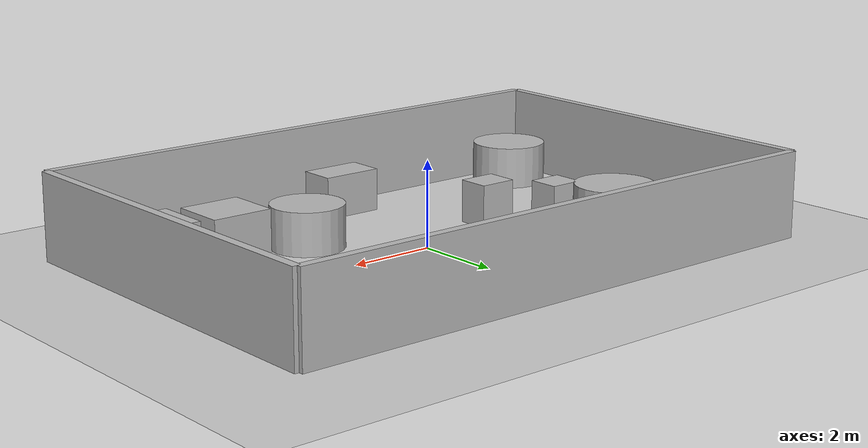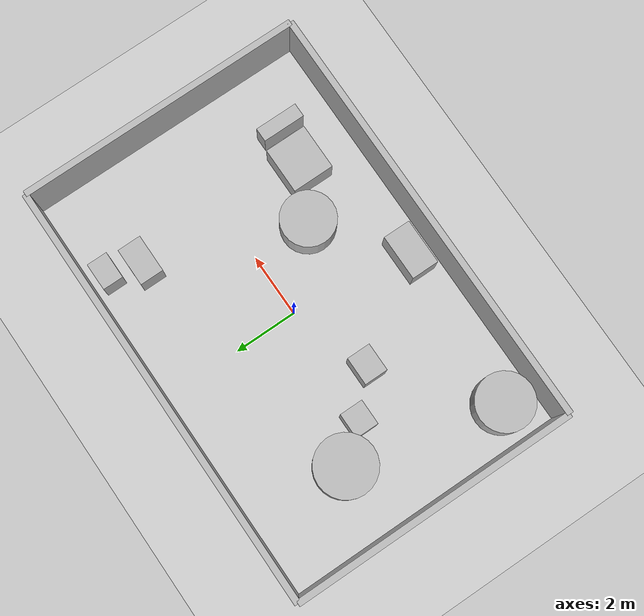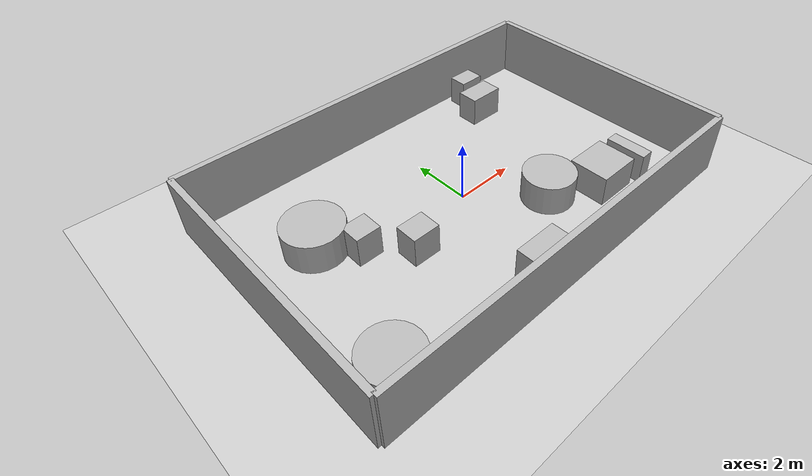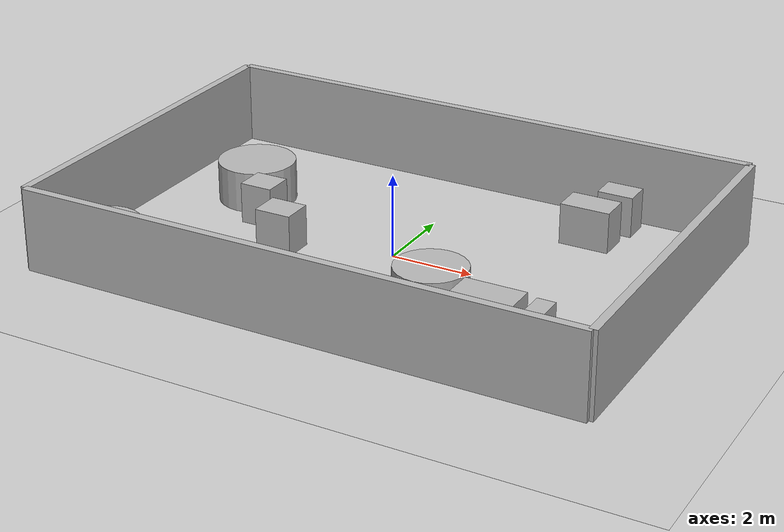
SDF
<?xml version="1.0"?>
<sdf version="1.6">
  <world name="env_6">

    <include><uri>model://ground_plane</uri></include>
    <include><uri>model://sun</uri></include>

    <!-- WALLS -->
    <model name="wall_north"><static>true</static><pose>0 4.513135244095093 1 0 0 0</pose>
      <link name="link"><collision name="collision">
        <geometry><box><size>13.61917481688391 0.2 2</size></box></geometry>
      </collision><visual name="visual">
        <geometry><box><size>13.61917481688391 0.2 2</size></box></geometry>
      </visual></link>
    </model>

    <model name="wall_south"><static>true</static><pose>0 -4.513135244095093 1 0 0 0</pose>
      <link name="link"><collision name="collision">
        <geometry><box><size>13.61917481688391 0.2 2</size></box></geometry>
      </collision><visual name="visual">
        <geometry><box><size>13.61917481688391 0.2 2</size></box></geometry>
      </visual></link>
    </model>

    <model name="wall_east"><static>true</static><pose>6.809587408441955 0 1 0 0 1.57</pose>
      <link name="link"><collision name="collision">
        <geometry><box><size>9.026270488190185 0.2 2</size></box></geometry>
      </collision><visual name="visual">
        <geometry><box><size>9.026270488190185 0.2 2</size></box></geometry>
      </visual></link>
    </model>

    <model name="wall_west"><static>true</static><pose>-6.809587408441955 0 1 0 0 1.57</pose>
      <link name="link"><collision name="collision">
        <geometry><box><size>9.026270488190185 0.2 2</size></box></geometry>
      </collision><visual name="visual">
        <geometry><box><size>9.026270488190185 0.2 2</size></box></geometry>
      </visual></link>
    </model>

    <!-- SENSOR -->

    <model name="lidar_sensor">
      <static>true</static>
      <pose>-1.6352117508510613 -0.35235300299562633 0.4 0 0 0</pose>
      <link name="link">
        <sensor name="lidar" type="ray">
          <pose>0 0 0 0 0 0</pose>
          <visualize>true</visualize>
          <always_on>true</always_on>
          <update_rate>10</update_rate>
          <ray>
            <scan><horizontal>
              <samples>240</samples>
              <resolution>1</resolution>
              <min_angle>-3.14159</min_angle>
              <max_angle>3.14159</max_angle>
            </horizontal></scan>
            <range><min>0.15</min><max>20.0</max><resolution>0.01</resolution></range>
          </ray>
          <plugin name="lidar_plugin" filename="liblidar_plugin.so"/>
        </sensor>
      </link>
    </model>

    <!-- OBSTACLES -->

    <model name="obstacle_0">
      <static>true</static>
      <pose>-5.5645091969520415 -3.4224776956182694 0.5 0 0 0</pose>
      <link name="link">
        <collision name="collision">
          <geometry><cylinder><radius>0.89</radius><length>1.0</length></cylinder></geometry>
        </collision>
        <visual name="visual">
          <geometry><cylinder><radius>0.89</radius><length>1.0</length></cylinder></geometry>
        </visual>
      </link>
    </model>

    <model name="obstacle_1">
      <static>true</static>
      <pose>-3.6399288114870654 0.26497996242662936 0.5 0 0 0</pose>
      <link name="link">
        <collision name="collision">
          <geometry><box><size>0.81 0.74 1.0</size></box></geometry>
        </collision>
        <visual name="visual">
          <geometry><box><size>0.81 0.74 1.0</size></box></geometry>
        </visual>
      </link>
    </model>

    <model name="obstacle_2">
      <static>true</static>
      <pose>3.940803992117318 3.8659069205445338 0.5 0 0 0</pose>
      <link name="link">
        <collision name="collision">
          <geometry><box><size>0.87 0.65 1.0</size></box></geometry>
        </collision>
        <visual name="visual">
          <geometry><box><size>0.87 0.65 1.0</size></box></geometry>
        </visual>
      </link>
    </model>

    <model name="obstacle_3">
      <static>true</static>
      <pose>-0.48032090976990105 -3.733651563831411 0.5 0 0 0</pose>
      <link name="link">
        <collision name="collision">
          <geometry><box><size>1.45 0.87 1.0</size></box></geometry>
        </collision>
        <visual name="visual">
          <geometry><box><size>1.45 0.87 1.0</size></box></geometry>
        </visual>
      </link>
    </model>

    <model name="obstacle_4">
      <static>true</static>
      <pose>-4.508533442464362 1.3174055146354542 0.5 0 0 0</pose>
      <link name="link">
        <collision name="collision">
          <geometry><cylinder><radius>0.95</radius><length>1.0</length></cylinder></geometry>
        </collision>
        <visual name="visual">
          <geometry><cylinder><radius>0.95</radius><length>1.0</length></cylinder></geometry>
        </visual>
      </link>
    </model>

    <model name="obstacle_5">
      <static>true</static>
      <pose>4.765959496106462 -2.751506702842219 0.5 0 0 0</pose>
      <link name="link">
        <collision name="collision">
          <geometry><box><size>0.44 1.36 1.0</size></box></geometry>
        </collision>
        <visual name="visual">
          <geometry><box><size>0.44 1.36 1.0</size></box></geometry>
        </visual>
      </link>
    </model>

    <model name="obstacle_6">
      <static>true</static>
      <pose>3.5510819678436567 -2.6039614218908325 0.5 0 0 0</pose>
      <link name="link">
        <collision name="collision">
          <geometry><box><size>1.46 1.32 1.0</size></box></geometry>
        </collision>
        <visual name="visual">
          <geometry><box><size>1.46 1.32 1.0</size></box></geometry>
        </visual>
      </link>
    </model>

    <model name="obstacle_7">
      <static>true</static>
      <pose>1.9344582774516104 -1.815294028179883 0.5 0 0 0</pose>
      <link name="link">
        <collision name="collision">
          <geometry><cylinder><radius>0.85</radius><length>1.0</length></cylinder></geometry>
        </collision>
        <visual name="visual">
          <geometry><cylinder><radius>0.85</radius><length>1.0</length></cylinder></geometry>
        </visual>
      </link>
    </model>

    <model name="obstacle_8">
      <static>true</static>
      <pose>3.629713960551208 2.8582490906926603 0.5 0 0 0</pose>
      <link name="link">
        <collision name="collision">
          <geometry><box><size>1.21 0.75 1.0</size></box></geometry>
        </collision>
        <visual name="visual">
          <geometry><box><size>1.21 0.75 1.0</size></box></geometry>
        </visual>
      </link>
    </model>

    <model name="obstacle_9">
      <static>true</static>
      <pose>-2.493073034790983 -0.8104729775597539 0.5 0 0 0</pose>
      <link name="link">
        <collision name="collision">
          <geometry><box><size>0.9 0.75 1.0</size></box></geometry>
        </collision>
        <visual name="visual">
          <geometry><box><size>0.9 0.75 1.0</size></box></geometry>
        </visual>
      </link>
    </model>

  </world>
</sdf>
